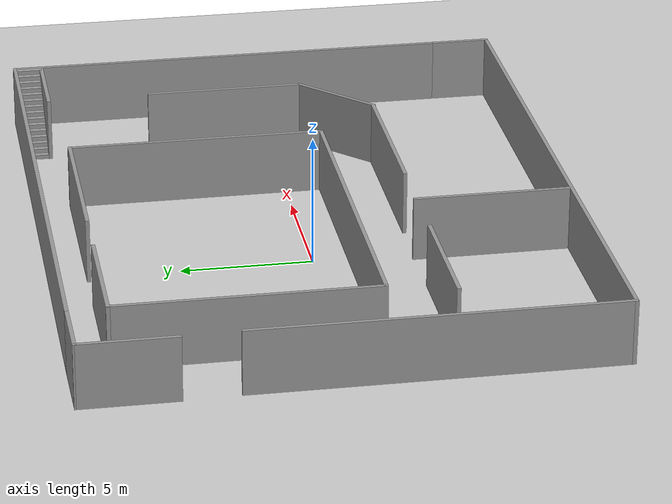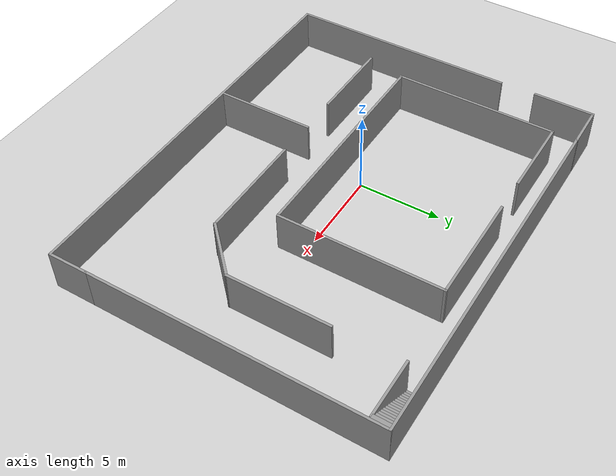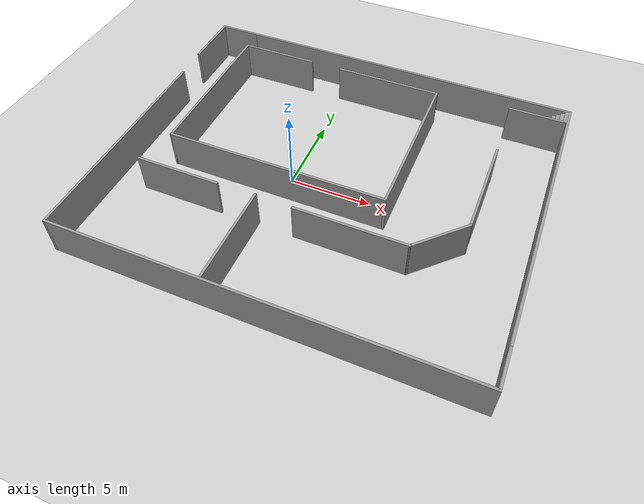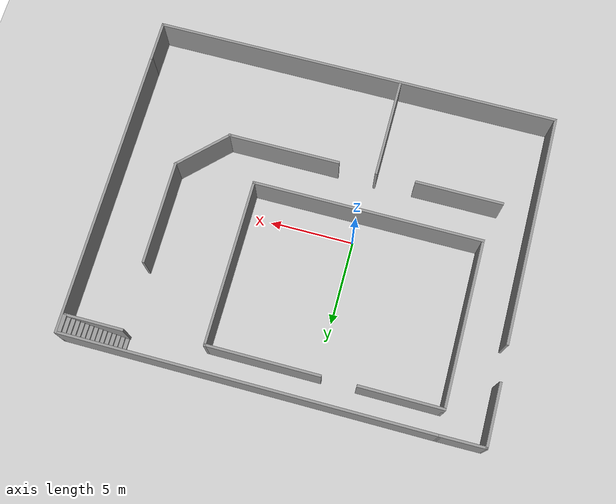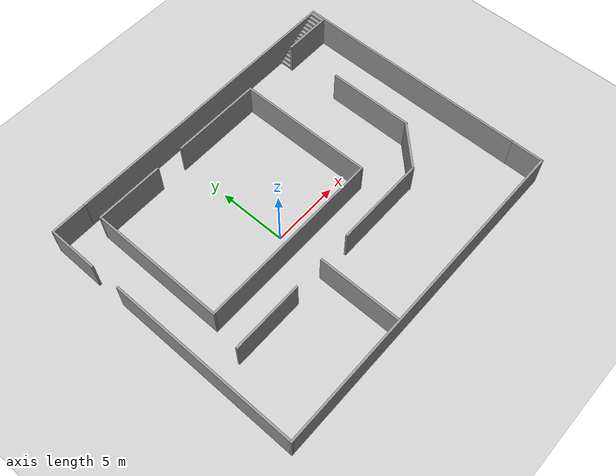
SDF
<sdf version="1.7">
 <world name="default">
  <light name="sun" type="directional">
   <pose>0 0 10 0 -0 0</pose>
   <diffuse>0.8 0.8 0.8 1</diffuse>
   <specular>0.2 0.2 0.2 1</specular>
   <attenuation>
    <range>1000</range>
    <constant>0.9</constant>
    <linear>0.01</linear>
    <quadratic>0.001</quadratic>
   </attenuation>
   <direction>-0.5 0.1 -0.9</direction>
   <spot><inner_angle>0</inner_angle><outer_angle>0</outer_angle><falloff>0</falloff></spot>
  </light>
  <model name="ground_plane">
   <static>1</static>
   <link name="link">
    <collision name="collision">
     <geometry><plane><normal>0 0 1</normal><size>100 100</size></plane></geometry>
     <surface>
      <contact><collide_bitmask>65535</collide_bitmask></contact>
      <friction><ode><mu>100</mu><mu2>50</mu2></ode></friction>
     </surface>
    </collision>
    <visual name="visual">
     <cast_shadows>0</cast_shadows>
     <geometry><plane><normal>0 0 1</normal><size>100 100</size></plane></geometry>
     <material>
      <script><uri>file://media/materials/scripts/gazebo.material</uri><name>Gazebo/Grey</name></script>
     </material>
    </visual>
   </link>
  </model>
  <gravity>0 0 -9.8</gravity>
  <magnetic_field>6e-06 2.3e-05 -4.2e-05</magnetic_field>
  <atmosphere type="adiabatic"/>
  <physics type="ode">
   <max_step_size>0.001</max_step_size>
   <real_time_factor>1</real_time_factor>
   <real_time_update_rate>1000</real_time_update_rate>
  </physics>
  <scene><ambient>0.4 0.4 0.4 1</ambient><background>0.7 0.7 0.7 1</background><shadows>1</shadows></scene>
  <spherical_coordinates>
   <surface_model>EARTH_WGS84</surface_model>
   <latitude_deg>0</latitude_deg>
   <longitude_deg>0</longitude_deg>
   <elevation>0</elevation>
   <heading_deg>0</heading_deg>
  </spherical_coordinates>
  <model name="myworld1">
   <pose>2.32921 0.049771 0 0 -0 0</pose>
   <link name="Stairs_0">
    <visual name="Stairs_0_Visual_0">
     <pose>8.76424 9.2881 0.083333 0 -0 1.5708</pose>
     <geometry><box><size>1 0.233333 0.166667</size></box></geometry>
     <material>
      <script><uri>file://media/materials/scripts/gazebo.material</uri><name>Gazebo/Grey</name></script>
      <ambient>1 1 1 1</ambient>
     </material>
     <meta><layer>0</layer></meta>
    </visual>
    <collision name="Stairs_0_Collision_0">
     <geometry><box><size>1 0.233333 0.166667</size></box></geometry>
     <pose>8.76424 9.2881 0.083333 0 -0 1.5708</pose>
    </collision>
    <visual name="Stairs_0_Visual_1">
     <pose>8.99757 9.2881 0.25 0 -0 1.5708</pose>
     <geometry><box><size>1 0.233333 0.166667</size></box></geometry>
     <material>
      <script><uri>file://media/materials/scripts/gazebo.material</uri><name>Gazebo/Grey</name></script>
      <ambient>1 1 1 1</ambient>
     </material>
     <meta><layer>0</layer></meta>
    </visual>
    <collision name="Stairs_0_Collision_1">
     <geometry><box><size>1 0.233333 0.166667</size></box></geometry>
     <pose>8.99757 9.2881 0.25 0 -0 1.5708</pose>
    </collision>
    <visual name="Stairs_0_Visual_2">
     <pose>9.23091 9.2881 0.416667 0 -0 1.5708</pose>
     <geometry><box><size>1 0.233333 0.166667</size></box></geometry>
     <material>
      <script><uri>file://media/materials/scripts/gazebo.material</uri><name>Gazebo/Grey</name></script>
      <ambient>1 1 1 1</ambient>
     </material>
     <meta><layer>0</layer></meta>
    </visual>
    <collision name="Stairs_0_Collision_2">
     <geometry><box><size>1 0.233333 0.166667</size></box></geometry>
     <pose>9.23091 9.2881 0.416667 0 -0 1.5708</pose>
    </collision>
    <visual name="Stairs_0_Visual_3">
     <pose>9.46424 9.2881 0.583333 0 -0 1.5708</pose>
     <geometry><box><size>1 0.233333 0.166667</size></box></geometry>
     <material>
      <script><uri>file://media/materials/scripts/gazebo.material</uri><name>Gazebo/Grey</name></script>
      <ambient>1 1 1 1</ambient>
     </material>
     <meta><layer>0</layer></meta>
    </visual>
    <collision name="Stairs_0_Collision_3">
     <geometry><box><size>1 0.233333 0.166667</size></box></geometry>
     <pose>9.46424 9.2881 0.583333 0 -0 1.5708</pose>
    </collision>
    <visual name="Stairs_0_Visual_4">
     <pose>9.69758 9.2881 0.75 0 -0 1.5708</pose>
     <geometry><box><size>1 0.233333 0.166667</size></box></geometry>
     <material>
      <script><uri>file://media/materials/scripts/gazebo.material</uri><name>Gazebo/Grey</name></script>
      <ambient>1 1 1 1</ambient>
     </material>
     <meta><layer>0</layer></meta>
    </visual>
    <collision name="Stairs_0_Collision_4">
     <geometry><box><size>1 0.233333 0.166667</size></box></geometry>
     <pose>9.69758 9.2881 0.75 0 -0 1.5708</pose>
    </collision>
    <visual name="Stairs_0_Visual_5">
     <pose>9.93091 9.2881 0.916667 0 -0 1.5708</pose>
     <geometry><box><size>1 0.233333 0.166667</size></box></geometry>
     <material>
      <script><uri>file://media/materials/scripts/gazebo.material</uri><name>Gazebo/Grey</name></script>
      <ambient>1 1 1 1</ambient>
     </material>
     <meta><layer>0</layer></meta>
    </visual>
    <collision name="Stairs_0_Collision_5">
     <geometry><box><size>1 0.233333 0.166667</size></box></geometry>
     <pose>9.93091 9.2881 0.916667 0 -0 1.5708</pose>
    </collision>
    <visual name="Stairs_0_Visual_6">
     <pose>10.1642 9.2881 1.08333 0 -0 1.5708</pose>
     <geometry><box><size>1 0.233333 0.166667</size></box></geometry>
     <material>
      <script><uri>file://media/materials/scripts/gazebo.material</uri><name>Gazebo/Grey</name></script>
      <ambient>1 1 1 1</ambient>
     </material>
     <meta><layer>0</layer></meta>
    </visual>
    <collision name="Stairs_0_Collision_6">
     <geometry><box><size>1 0.233333 0.166667</size></box></geometry>
     <pose>10.1642 9.2881 1.08333 0 -0 1.5708</pose>
    </collision>
    <visual name="Stairs_0_Visual_7">
     <pose>10.3976 9.2881 1.25 0 -0 1.5708</pose>
     <geometry><box><size>1 0.233333 0.166667</size></box></geometry>
     <material>
      <script><uri>file://media/materials/scripts/gazebo.material</uri><name>Gazebo/Grey</name></script>
      <ambient>1 1 1 1</ambient>
     </material>
     <meta><layer>0</layer></meta>
    </visual>
    <collision name="Stairs_0_Collision_7">
     <geometry><box><size>1 0.233333 0.166667</size></box></geometry>
     <pose>10.3976 9.2881 1.25 0 -0 1.5708</pose>
    </collision>
    <visual name="Stairs_0_Visual_8">
     <pose>10.6309 9.2881 1.41667 0 -0 1.5708</pose>
     <geometry><box><size>1 0.233333 0.166667</size></box></geometry>
     <material>
      <script><uri>file://media/materials/scripts/gazebo.material</uri><name>Gazebo/Grey</name></script>
      <ambient>1 1 1 1</ambient>
     </material>
     <meta><layer>0</layer></meta>
    </visual>
    <collision name="Stairs_0_Collision_8">
     <geometry><box><size>1 0.233333 0.166667</size></box></geometry>
     <pose>10.6309 9.2881 1.41667 0 -0 1.5708</pose>
    </collision>
    <visual name="Stairs_0_Visual_9">
     <pose>10.8642 9.2881 1.58333 0 -0 1.5708</pose>
     <geometry><box><size>1 0.233333 0.166667</size></box></geometry>
     <material>
      <script><uri>file://media/materials/scripts/gazebo.material</uri><name>Gazebo/Grey</name></script>
      <ambient>1 1 1 1</ambient>
     </material>
     <meta><layer>0</layer></meta>
    </visual>
    <collision name="Stairs_0_Collision_9">
     <geometry><box><size>1 0.233333 0.166667</size></box></geometry>
     <pose>10.8642 9.2881 1.58333 0 -0 1.5708</pose>
    </collision>
    <visual name="Stairs_0_Visual_10">
     <pose>11.0976 9.2881 1.75 0 -0 1.5708</pose>
     <geometry><box><size>1 0.233333 0.166667</size></box></geometry>
     <material>
      <script><uri>file://media/materials/scripts/gazebo.material</uri><name>Gazebo/Grey</name></script>
      <ambient>1 1 1 1</ambient>
     </material>
     <meta><layer>0</layer></meta>
    </visual>
    <collision name="Stairs_0_Collision_10">
     <geometry><box><size>1 0.233333 0.166667</size></box></geometry>
     <pose>11.0976 9.2881 1.75 0 -0 1.5708</pose>
    </collision>
    <visual name="Stairs_0_Visual_11">
     <pose>11.3309 9.2881 1.91667 0 -0 1.5708</pose>
     <geometry><box><size>1 0.233333 0.166667</size></box></geometry>
     <material>
      <script><uri>file://media/materials/scripts/gazebo.material</uri><name>Gazebo/Grey</name></script>
      <ambient>1 1 1 1</ambient>
     </material>
     <meta><layer>0</layer></meta>
    </visual>
    <collision name="Stairs_0_Collision_11">
     <geometry><box><size>1 0.233333 0.166667</size></box></geometry>
     <pose>11.3309 9.2881 1.91667 0 -0 1.5708</pose>
    </collision>
    <visual name="Stairs_0_Visual_12">
     <pose>11.5642 9.2881 2.08333 0 -0 1.5708</pose>
     <geometry><box><size>1 0.233333 0.166667</size></box></geometry>
     <material>
      <script><uri>file://media/materials/scripts/gazebo.material</uri><name>Gazebo/Grey</name></script>
      <ambient>1 1 1 1</ambient>
     </material>
     <meta><layer>0</layer></meta>
    </visual>
    <collision name="Stairs_0_Collision_12">
     <geometry><box><size>1 0.233333 0.166667</size></box></geometry>
     <pose>11.5642 9.2881 2.08333 0 -0 1.5708</pose>
    </collision>
    <visual name="Stairs_0_Visual_13">
     <pose>11.7976 9.2881 2.25 0 -0 1.5708</pose>
     <geometry><box><size>1 0.233333 0.166667</size></box></geometry>
     <material>
      <script><uri>file://media/materials/scripts/gazebo.material</uri><name>Gazebo/Grey</name></script>
      <ambient>1 1 1 1</ambient>
     </material>
     <meta><layer>0</layer></meta>
    </visual>
    <collision name="Stairs_0_Collision_13">
     <geometry><box><size>1 0.233333 0.166667</size></box></geometry>
     <pose>11.7976 9.2881 2.25 0 -0 1.5708</pose>
    </collision>
    <visual name="Stairs_0_Visual_14">
     <pose>12.0309 9.2881 2.41667 0 -0 1.5708</pose>
     <geometry><box><size>1 0.233333 0.166667</size></box></geometry>
     <material>
      <script><uri>file://media/materials/scripts/gazebo.material</uri><name>Gazebo/Grey</name></script>
      <ambient>1 1 1 1</ambient>
     </material>
     <meta><layer>0</layer></meta>
    </visual>
    <collision name="Stairs_0_Collision_14">
     <geometry><box><size>1 0.233333 0.166667</size></box></geometry>
     <pose>12.0309 9.2881 2.41667 0 -0 1.5708</pose>
    </collision>
   </link>
   <link name="Wall_11">
    <collision name="Wall_11_Collision">
     <geometry><box><size>22 0.15 2.5</size></box></geometry>
     <pose>0 0 1.25 0 -0 0</pose>
    </collision>
    <visual name="Wall_11_Visual">
     <pose>0 0 1.25 0 -0 0</pose>
     <geometry><box><size>22 0.15 2.5</size></box></geometry>
     <material>
      <script><uri>file://media/materials/scripts/gazebo.material</uri><name>Gazebo/Grey</name></script>
      <ambient>1 1 1 1</ambient>
     </material>
     <meta><layer>0</layer></meta>
    </visual>
    <pose>1.28756 9.8497 0 0 -0 0</pose>
   </link>
   <link name="Wall_12">
    <collision name="Wall_12_Collision">
     <geometry><box><size>17.5 0.15 2.5</size></box></geometry>
     <pose>0 0 1.25 0 -0 0</pose>
    </collision>
    <visual name="Wall_12_Visual">
     <pose>0 0 1.25 0 -0 0</pose>
     <geometry><box><size>17.5 0.15 2.5</size></box></geometry>
     <material>
      <script><uri>file://media/materials/scripts/gazebo.material</uri><name>Gazebo/Grey</name></script>
      <ambient>1 1 1 1</ambient>
     </material>
     <meta><layer>0</layer></meta>
    </visual>
    <pose>12.2126 1.1747 0 0 -0 -1.5708</pose>
   </link>
   <link name="Wall_13">
    <collision name="Wall_13_Collision">
     <geometry><box><size>2.5 0.15 2.5</size></box></geometry>
     <pose>0 0 1.25 0 -0 0</pose>
    </collision>
    <visual name="Wall_13_Visual">
     <pose>0 0 1.25 0 -0 0</pose>
     <geometry><box><size>2.5 0.15 2.5</size></box></geometry>
     <material>
      <script><uri>file://media/materials/scripts/gazebo.material</uri><name>Gazebo/Grey</name></script>
      <ambient>1 1 1 1</ambient>
     </material>
     <meta><layer>0</layer></meta>
    </visual>
    <pose>12.2126 -8.6753 0 0 -0 -1.5708</pose>
   </link>
   <link name="Wall_14">
    <collision name="Wall_14_Collision">
     <geometry><box><size>24.5 0.15 2.5</size></box></geometry>
     <pose>0 0 1.25 0 -0 0</pose>
    </collision>
    <visual name="Wall_14_Visual">
     <pose>0 0 1.25 0 -0 0</pose>
     <geometry><box><size>24.5 0.15 2.5</size></box></geometry>
     <material>
      <script><uri>file://media/materials/scripts/gazebo.material</uri><name>Gazebo/Grey</name></script>
      <ambient>1 1 1 1</ambient>
     </material>
     <meta><layer>0</layer></meta>
    </visual>
    <pose>0.037564 -9.8503 0 0 -0 3.14159</pose>
   </link>
   <link name="Wall_15">
    <collision name="Wall_15_Collision">
     <geometry><box><size>14 0.15 2.5</size></box></geometry>
     <pose>0 0 1.25 0 -0 0</pose>
    </collision>
    <visual name="Wall_15_Visual">
     <pose>0 0 1.25 0 -0 0</pose>
     <geometry><box><size>14 0.15 2.5</size></box></geometry>
     <material>
      <script><uri>file://media/materials/scripts/gazebo.material</uri><name>Gazebo/Grey</name></script>
      <ambient>1 1 1 1</ambient>
     </material>
     <meta><layer>0</layer></meta>
    </visual>
    <pose>-12.1374 -2.9253 0 0 -0 1.5708</pose>
   </link>
   <link name="Wall_17">
    <collision name="Wall_17_Collision">
     <geometry><box><size>3.75 0.15 2.5</size></box></geometry>
     <pose>0 0 1.25 0 -0 0</pose>
    </collision>
    <visual name="Wall_17_Visual">
     <pose>0 0 1.25 0 -0 0</pose>
     <geometry><box><size>3.75 0.15 2.5</size></box></geometry>
     <material>
      <script><uri>file://media/materials/scripts/gazebo.material</uri><name>Gazebo/Grey</name></script>
      <ambient>1 1 1 1</ambient>
     </material>
     <meta><layer>0</layer></meta>
    </visual>
    <pose>-12.212 8.02926 0 0 -0 1.5708</pose>
   </link>
   <link name="Wall_18">
    <collision name="Wall_18_Collision">
     <geometry><box><size>2.72462 0.15 2.5</size></box></geometry>
     <pose>0 0 1.25 0 -0 0</pose>
    </collision>
    <visual name="Wall_18_Visual">
     <pose>0 0 1.25 0 -0 0</pose>
     <geometry><box><size>2.72462 0.15 2.5</size></box></geometry>
     <material>
      <script><uri>file://media/materials/scripts/gazebo.material</uri><name>Gazebo/Grey</name></script>
      <ambient>1 1 1 1</ambient>
     </material>
     <meta><layer>0</layer></meta>
    </visual>
    <pose>-10.9247 9.83948 0 0 -0 0.00794</pose>
   </link>
   <link name="Wall_20">
    <collision name="Wall_20_Collision">
     <geometry><box><size>5.25 0.15 2.5</size></box></geometry>
     <pose>0 0 1.25 0 -0 0</pose>
    </collision>
    <visual name="Wall_20_Visual">
     <pose>0 0 1.25 0 -0 0</pose>
     <geometry><box><size>5.25 0.15 2.5</size></box></geometry>
     <material>
      <script><uri>file://media/materials/scripts/gazebo.material</uri><name>Gazebo/Grey</name></script>
      <ambient>1 1 1 1</ambient>
     </material>
     <meta><layer>0</layer></meta>
    </visual>
    <pose>-7.6305 -3.92809 0 0 -0 0</pose>
   </link>
   <link name="Wall_22">
    <collision name="Wall_22_Collision">
     <geometry><box><size>6 0.15 2.5</size></box></geometry>
     <pose>0 0 1.25 0 -0 0</pose>
    </collision>
    <visual name="Wall_22_Visual">
     <pose>0 0 1.25 0 -0 0</pose>
     <geometry><box><size>6 0.15 2.5</size></box></geometry>
     <material>
      <script><uri>file://media/materials/scripts/gazebo.material</uri><name>Gazebo/Grey</name></script>
      <ambient>1 1 1 1</ambient>
     </material>
     <meta><layer>0</layer></meta>
    </visual>
    <pose>-2.69825 -6.79275 0 0 -0 -1.5708</pose>
   </link>
   <link name="Wall_24">
    <collision name="Wall_24_Collision">
     <geometry><box><size>3.5 0.15 2.5</size></box></geometry>
     <pose>0 0 1.25 0 -0 0</pose>
    </collision>
    <visual name="Wall_24_Visual">
     <pose>0 0 1.25 0 -0 0</pose>
     <geometry><box><size>3.5 0.15 2.5</size></box></geometry>
     <material>
      <script><uri>file://media/materials/scripts/gazebo.material</uri><name>Gazebo/Grey</name></script>
      <ambient>1 1 1 1</ambient>
     </material>
     <meta><layer>0</layer></meta>
    </visual>
    <pose>10.3611 8.78752 0 0 -0 0</pose>
   </link>
   <link name="Wall_26">
    <collision name="Wall_26_Collision">
     <geometry><box><size>6.75 0.15 2.5</size></box></geometry>
     <pose>0 0 1.25 0 -0 0</pose>
    </collision>
    <visual name="Wall_26_Visual">
     <pose>0 0 1.25 0 -0 0</pose>
     <geometry><box><size>6.75 0.15 2.5</size></box></geometry>
     <material>
      <script><uri>file://media/materials/scripts/gazebo.material</uri><name>Gazebo/Grey</name></script>
      <ambient>1 1 1 1</ambient>
     </material>
     <meta><layer>0</layer></meta>
    </visual>
    <pose>2.9149 -3.92426 0 0 -0 0</pose>
   </link>
   <link name="Wall_27">
    <collision name="Wall_27_Collision">
     <geometry><box><size>3.75 0.15 2.5</size></box></geometry>
     <pose>0 0 1.25 0 -0 0</pose>
    </collision>
    <visual name="Wall_27_Visual">
     <pose>0 0 1.25 0 -0 0</pose>
     <geometry><box><size>3.75 0.15 2.5</size></box></geometry>
     <material>
      <script><uri>file://media/materials/scripts/gazebo.material</uri><name>Gazebo/Grey</name></script>
      <ambient>1 1 1 1</ambient>
     </material>
     <meta><layer>0</layer></meta>
    </visual>
    <pose>7.4877 -2.65146 0 0 -0 0.785398</pose>
   </link>
   <link name="Wall_28">
    <collision name="Wall_28_Collision">
     <geometry><box><size>6.25 0.15 2.5</size></box></geometry>
     <pose>0 0 1.25 0 -0 0</pose>
    </collision>
    <visual name="Wall_28_Visual">
     <pose>0 0 1.25 0 -0 0</pose>
     <geometry><box><size>6.25 0.15 2.5</size></box></geometry>
     <material>
      <script><uri>file://media/materials/scripts/gazebo.material</uri><name>Gazebo/Grey</name></script>
      <ambient>1 1 1 1</ambient>
     </material>
     <meta><layer>0</layer></meta>
    </visual>
    <pose>8.76049 1.67133 0 0 -0 1.5708</pose>
   </link>
   <link name="Wall_4">
    <collision name="Wall_4_Collision">
     <geometry><box><size>5 0.15 2.5</size></box></geometry>
     <pose>0 0 1.25 0 -0 0</pose>
    </collision>
    <visual name="Wall_4_Visual">
     <pose>0 0 1.25 0 -0 0</pose>
     <geometry><box><size>5 0.15 2.5</size></box></geometry>
     <material>
      <script><uri>file://media/materials/scripts/gazebo.material</uri><name>Gazebo/Grey</name></script>
      <ambient>1 1 1 1</ambient>
     </material>
     <meta><layer>0</layer></meta>
    </visual>
    <pose>-7.1521 8.40153 0 0 -0 0</pose>
   </link>
   <link name="Wall_6">
    <collision name="Wall_6_Collision">
     <geometry><box><size>10 0.15 2.5</size></box></geometry>
     <pose>0 0 1.25 0 -0 0</pose>
    </collision>
    <visual name="Wall_6_Visual">
     <pose>0 0 1.25 0 -0 0</pose>
     <geometry><box><size>10 0.15 2.5</size></box></geometry>
     <material>
      <script><uri>file://media/materials/scripts/gazebo.material</uri><name>Gazebo/Grey</name></script>
      <ambient>1 1 1 1</ambient>
     </material>
     <meta><layer>0</layer></meta>
    </visual>
    <pose>-9.57709 3.47653 0 0 -0 -1.5708</pose>
   </link>
   <link name="Wall_7">
    <collision name="Wall_7_Collision">
     <geometry><box><size>13.75 0.15 2.5</size></box></geometry>
     <pose>0 0 1.25 0 -0 0</pose>
    </collision>
    <visual name="Wall_7_Visual">
     <pose>0 0 1.25 0 -0 0</pose>
     <geometry><box><size>13.75 0.15 2.5</size></box></geometry>
     <material>
      <script><uri>file://media/materials/scripts/gazebo.material</uri><name>Gazebo/Grey</name></script>
      <ambient>1 1 1 1</ambient>
     </material>
     <meta><layer>0</layer></meta>
    </visual>
    <pose>-2.7771 -1.44847 0 0 -0 0</pose>
   </link>
   <link name="Wall_8">
    <collision name="Wall_8_Collision">
     <geometry><box><size>10 0.15 2.5</size></box></geometry>
     <pose>0 0 1.25 0 -0 0</pose>
    </collision>
    <visual name="Wall_8_Visual">
     <pose>0 0 1.25 0 -0 0</pose>
     <geometry><box><size>10 0.15 2.5</size></box></geometry>
     <material>
      <script><uri>file://media/materials/scripts/gazebo.material</uri><name>Gazebo/Grey</name></script>
      <ambient>1 1 1 1</ambient>
     </material>
     <meta><layer>0</layer></meta>
    </visual>
    <pose>4.0229 3.47653 0 0 -0 1.5708</pose>
   </link>
   <link name="Wall_9">
    <collision name="Wall_9_Collision">
     <geometry><box><size>6.75 0.15 2.5</size></box></geometry>
     <pose>0 0 1.25 0 -0 0</pose>
    </collision>
    <visual name="Wall_9_Visual">
     <pose>0 0 1.25 0 -0 0</pose>
     <geometry><box><size>6.75 0.15 2.5</size></box></geometry>
     <material>
      <script><uri>file://media/materials/scripts/gazebo.material</uri><name>Gazebo/Grey</name></script>
      <ambient>1 1 1 1</ambient>
     </material>
     <meta><layer>0</layer></meta>
    </visual>
    <pose>0.722905 8.40153 0 0 -0 3.14159</pose>
   </link>
   <static>1</static>
  </model>
 </world>
</sdf>
